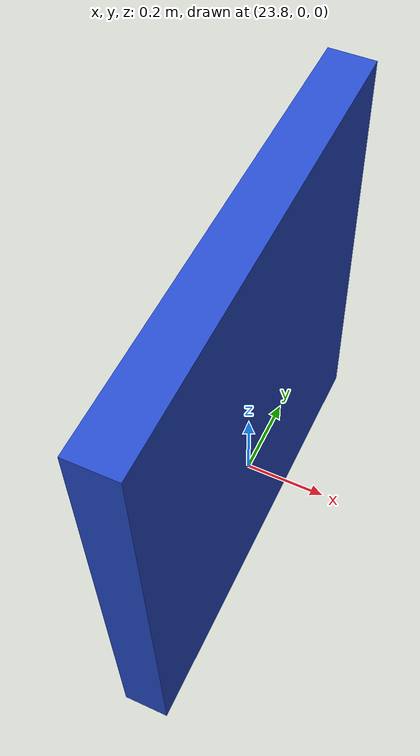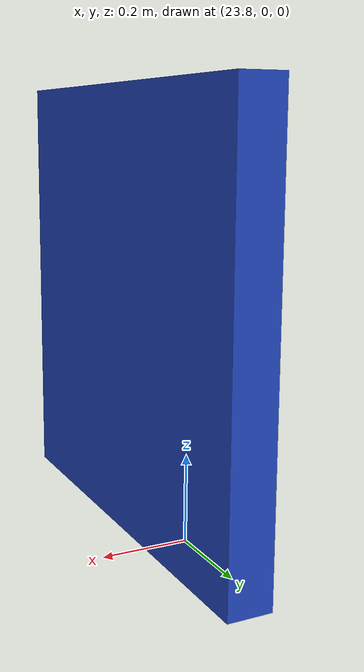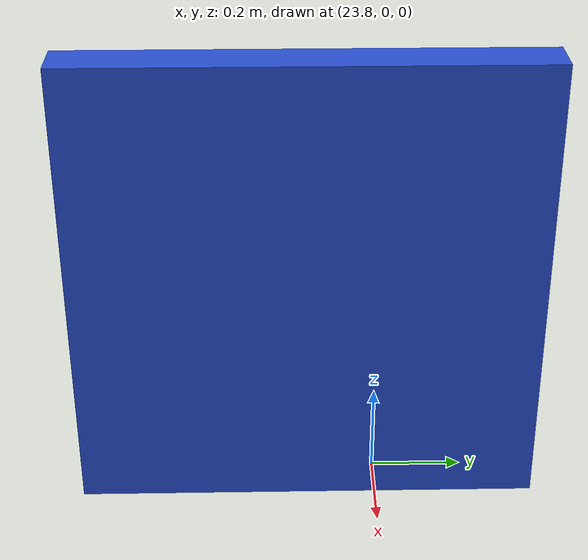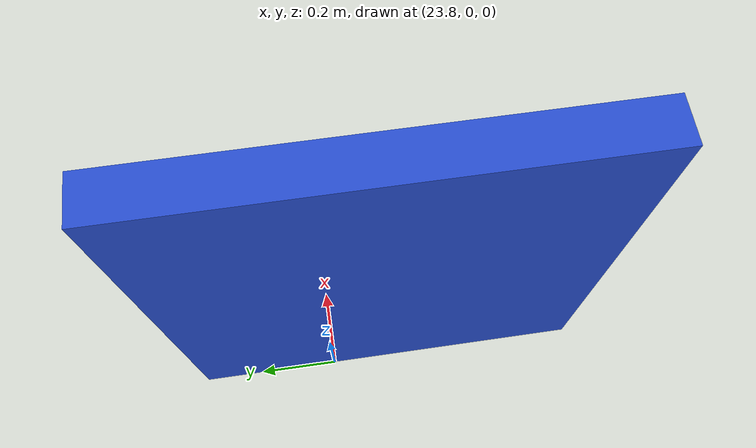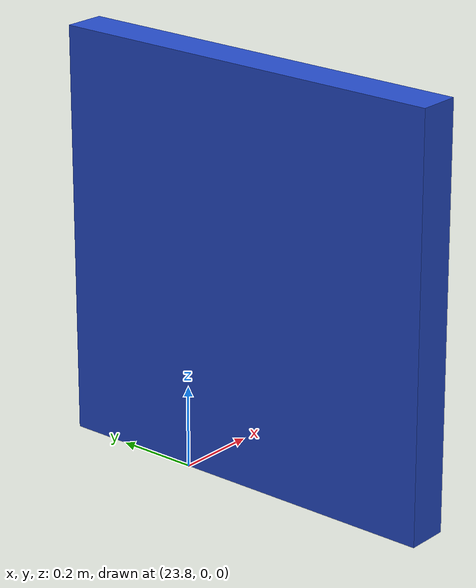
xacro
<?xml version="1.0"?>
<robot name="simple_box">
<link name="world"/>
  <link name="my_box">
    <inertial>
      <origin xyz="23.9 0 0.5" />
      <mass value="1.0" />
      <inertia  ixx="1.0" ixy="0.0"  ixz="0.0"  iyy="100.0"  iyz="0.0"  izz="1.0" />
    </inertial>
    <visual>
      <origin xyz="23.9 0 0.5"/>
      <geometry>
        <box size="0.1 1 1" />
      </geometry>
    </visual>
    <collision>
      <origin xyz="23.9 0 0.5"/>
      <geometry>
        <box size="0.1 1 1" />
      </geometry>
    </collision>
  </link>
  <gazebo reference="my_box">
    <material>Gazebo/Blue</material>
  </gazebo>
    <joint name="joint_my_box" type="fixed">
    <origin rpy="0 0 0" xyz="-0.05 -0.15 0"/>
    <child link="my_box"/>
    <parent link="world"/>
  </joint>
</robot>
